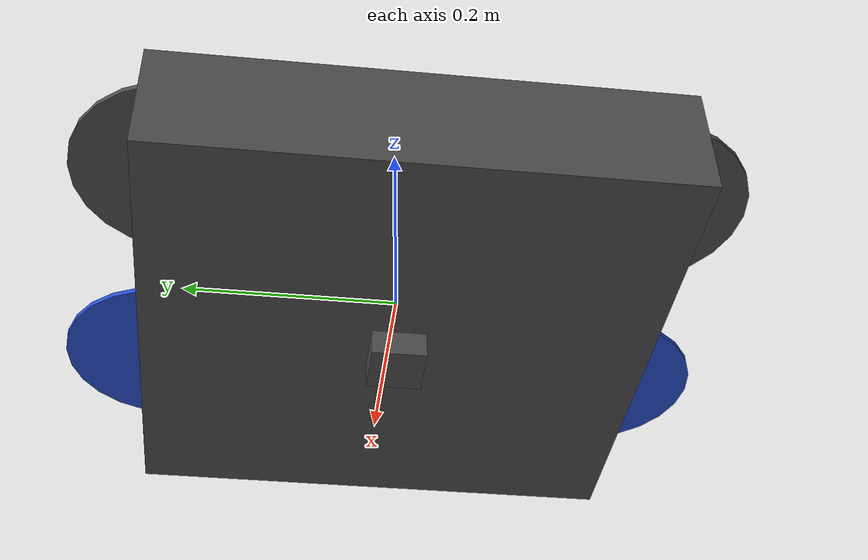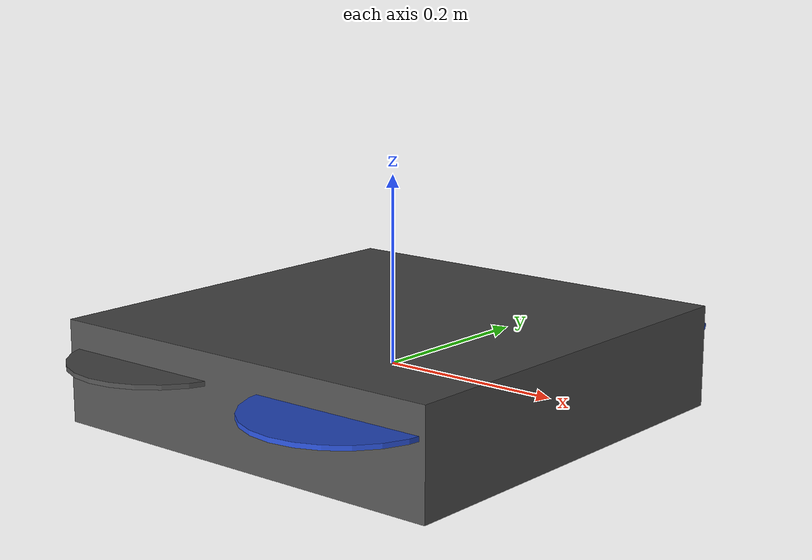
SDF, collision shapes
<sdf version='1.5'>
  <model name='iris'>
    <link name='base_link'>
      <pose frame=''>0 0 0 0 -0 0</pose>
      <inertial>
        <pose frame=''>0 0 -0 0 -0 0</pose>
        <mass>1.50001</mass>
        <inertia>
          <ixx>0.0347573</ixx>
          <ixy>0</ixy>
          <ixz>-1.03398e-25</ixz>
          <iyy>0.0458939</iyy>
          <iyz>0</iyz>
          <izz>0.097701</izz>
        </inertia>
      </inertial>
      <collision name='base_link_inertia_collision'>
        <pose frame=''>0 0 0 0 -0 0</pose>
        <geometry>
          <box>
            <size>0.47 0.47 0.11</size>
          </box>
        </geometry>
        <surface>
          <contact>
            <ode/>
          </contact>
          <friction>
            <ode/>
          </friction>
        </surface>
      </collision>
      <collision name='base_link_lump::camera_link_collision_1'>
        <pose frame=''>0 0 -0.055 0 1.57 0</pose>
        <geometry>
          <box>
            <size>0.05 0.05 0.05</size>
          </box>
        </geometry>
        <surface>
          <contact>
            <ode/>
          </contact>
          <friction>
            <ode/>
          </friction>
        </surface>
      </collision>
      <visual name='base_link_inertia_visual'>
        <pose frame=''>0 0 0 0 -0 0</pose>
        <geometry>
          <mesh>
            <scale>1 1 1</scale>
            <uri>model://rotors_description/meshes/iris.dae</uri>
          </mesh>
        </geometry>
        <material>
          <script>
            <name>Gazebo/DarkGrey</name>
            <uri>file://media/materials/scripts/gazebo.material</uri>
          </script>
        </material>
      </visual>
      <visual name='base_link_lump::camera_link_visual_1'>
        <pose frame=''>0 0 -0.055 0 1.57 0</pose>
        <geometry>
          <box>
            <size>0.05 0.05 0.05</size>
          </box>
        </geometry>
        <material>
          <script>
            <uri>__default__</uri>
            <name>__default__</name>
          </script>
        </material>
      </visual>
      <velocity_decay/>
      <gravity>1</gravity>
      <velocity_decay/>
      <self_collide>0</self_collide>
      <sensor name='camera1' type='camera'>
        <update_rate>30</update_rate>
        <camera name='head'>
          <horizontal_fov>1.39626</horizontal_fov>
          <image>
            <width>800</width>
            <height>600</height>
            <format>R8G8B8</format>
          </image>
          <clip>
            <near>0.02</near>
            <far>300</far>
          </clip>
          <noise>
            <type>gaussian</type>
            <mean>0</mean>
            <stddev>0.007</stddev>
          </noise>
        </camera>
        <plugin name='camera_controller' filename='libgazebo_ros_camera.so'>
          <alwaysOn>true</alwaysOn>
          <updateRate>0.0</updateRate>
          <cameraName>iris/camera1</cameraName>
          <imageTopicName>image_raw</imageTopicName>
          <cameraInfoTopicName>camera_info</cameraInfoTopicName>
          <frameName>camera_link</frameName>
          <hackBaseline>0.07</hackBaseline>
          <distortionK1>0.0</distortionK1>
          <distortionK2>0.0</distortionK2>
          <distortionK3>0.0</distortionK3>
          <distortionT1>0.0</distortionT1>
          <distortionT2>0.0</distortionT2>
        </plugin>
        <pose frame=''>0 0 -0.055 0 1.57 0</pose>
      </sensor>
    </link>
    <link name='iris/imu_link'>
      <pose frame=''>0 0 0 0 -0 0</pose>
      <inertial>
        <pose frame=''>0 0 0 0 -0 0</pose>
        <mass>0.015</mass>
        <inertia>
          <ixx>1e-05</ixx>
          <ixy>0</ixy>
          <ixz>0</ixz>
          <iyy>1e-05</iyy>
          <iyz>0</iyz>
          <izz>1e-05</izz>
        </inertia>
      </inertial>
    </link>
    <joint name='iris/imu_joint' type='revolute'>
      <child>iris/imu_link</child>
      <parent>base_link</parent>
      <axis>
        <xyz>1 0 0</xyz>
        <limit>
          <lower>0</lower>
          <upper>0</upper>
          <effort>0</effort>
          <velocity>0</velocity>
        </limit>
        <dynamics>
          <spring_reference>0</spring_reference>
          <spring_stiffness>0</spring_stiffness>
        </dynamics>
        <use_parent_model_frame>1</use_parent_model_frame>
      </axis>
    </joint>
    <link name='rotor_0'>
      <pose frame=''>0.13 -0.22 0.023 0 -0 0</pose>
      <inertial>
        <pose frame=''>0 0 0 0 -0 0</pose>
        <mass>0.005</mass>
        <inertia>
          <ixx>9.75e-07</ixx>
          <ixy>0</ixy>
          <ixz>0</ixz>
          <iyy>0.000166704</iyy>
          <iyz>0</iyz>
          <izz>0.000167604</izz>
        </inertia>
      </inertial>
      <collision name='rotor_0_collision'>
        <pose frame=''>0 0 0 0 -0 0</pose>
        <geometry>
          <cylinder>
            <length>0.005</length>
            <radius>0.1</radius>
          </cylinder>
        </geometry>
        <surface>
          <contact>
            <ode/>
          </contact>
          <friction>
            <ode/>
          </friction>
        </surface>
      </collision>
      <visual name='rotor_0_visual'>
        <pose frame=''>0 0 0 0 -0 0</pose>
        <geometry>
          <mesh>
            <scale>1 1 1</scale>
            <uri>model://rotors_description/meshes/iris_prop_ccw.dae</uri>
          </mesh>
        </geometry>
        <material>
          <script>
            <name>Gazebo/Blue</name>
            <uri>file://media/materials/scripts/gazebo.material</uri>
          </script>
        </material>
      </visual>
      <gravity>1</gravity>
      <velocity_decay/>
      <self_collide>0</self_collide>
    </link>
    <joint name='rotor_0_joint' type='revolute'>
      <child>rotor_0</child>
      <parent>base_link</parent>
      <axis>
        <xyz>0 0 1</xyz>
        <limit>
          <lower>-1e+16</lower>
          <upper>1e+16</upper>
        </limit>
        <dynamics>
          <spring_reference>0</spring_reference>
          <spring_stiffness>0</spring_stiffness>
        </dynamics>
        <use_parent_model_frame>1</use_parent_model_frame>
      </axis>
    </joint>
    <link name='rotor_1'>
      <pose frame=''>-0.13 0.2 0.023 0 -0 0</pose>
      <inertial>
        <pose frame=''>0 0 0 0 -0 0</pose>
        <mass>0.005</mass>
        <inertia>
          <ixx>9.75e-07</ixx>
          <ixy>0</ixy>
          <ixz>0</ixz>
          <iyy>0.000166704</iyy>
          <iyz>0</iyz>
          <izz>0.000167604</izz>
        </inertia>
      </inertial>
      <collision name='rotor_1_collision'>
        <pose frame=''>0 0 0 0 -0 0</pose>
        <geometry>
          <cylinder>
            <length>0.005</length>
            <radius>0.1</radius>
          </cylinder>
        </geometry>
        <surface>
          <contact>
            <ode/>
          </contact>
          <friction>
            <ode/>
          </friction>
        </surface>
      </collision>
      <visual name='rotor_1_visual'>
        <pose frame=''>0 0 0 0 -0 0</pose>
        <geometry>
          <mesh>
            <scale>1 1 1</scale>
            <uri>model://rotors_description/meshes/iris_prop_ccw.dae</uri>
          </mesh>
        </geometry>
        <material>
          <script>
            <name>Gazebo/DarkGrey</name>
            <uri>file://media/materials/scripts/gazebo.material</uri>
          </script>
        </material>
      </visual>
      <gravity>1</gravity>
      <velocity_decay/>
      <self_collide>0</self_collide>
    </link>
    <joint name='rotor_1_joint' type='revolute'>
      <child>rotor_1</child>
      <parent>base_link</parent>
      <axis>
        <xyz>0 0 1</xyz>
        <limit>
          <lower>-1e+16</lower>
          <upper>1e+16</upper>
        </limit>
        <dynamics>
          <spring_reference>0</spring_reference>
          <spring_stiffness>0</spring_stiffness>
        </dynamics>
        <use_parent_model_frame>1</use_parent_model_frame>
      </axis>
    </joint>
    <link name='rotor_2'>
      <pose frame=''>0.13 0.22 0.023 0 -0 0</pose>
      <inertial>
        <pose frame=''>0 0 0 0 -0 0</pose>
        <mass>0.005</mass>
        <inertia>
          <ixx>9.75e-07</ixx>
          <ixy>0</ixy>
          <ixz>0</ixz>
          <iyy>0.000166704</iyy>
          <iyz>0</iyz>
          <izz>0.000167604</izz>
        </inertia>
      </inertial>
      <collision name='rotor_2_collision'>
        <pose frame=''>0 0 0 0 -0 0</pose>
        <geometry>
          <cylinder>
            <length>0.005</length>
            <radius>0.1</radius>
          </cylinder>
        </geometry>
        <surface>
          <contact>
            <ode/>
          </contact>
          <friction>
            <ode/>
          </friction>
        </surface>
      </collision>
      <visual name='rotor_2_visual'>
        <pose frame=''>0 0 0 0 -0 0</pose>
        <geometry>
          <mesh>
            <scale>1 1 1</scale>
            <uri>model://rotors_description/meshes/iris_prop_cw.dae</uri>
          </mesh>
        </geometry>
        <material>
          <script>
            <name>Gazebo/Blue</name>
            <uri>file://media/materials/scripts/gazebo.material</uri>
          </script>
        </material>
      </visual>
      <gravity>1</gravity>
      <velocity_decay/>
      <self_collide>0</self_collide>
    </link>
    <joint name='rotor_2_joint' type='revolute'>
      <child>rotor_2</child>
      <parent>base_link</parent>
      <axis>
        <xyz>0 0 1</xyz>
        <limit>
          <lower>-1e+16</lower>
          <upper>1e+16</upper>
        </limit>
        <dynamics>
          <spring_reference>0</spring_reference>
          <spring_stiffness>0</spring_stiffness>
        </dynamics>
        <use_parent_model_frame>1</use_parent_model_frame>
      </axis>
    </joint>
    <link name='rotor_3'>
      <pose frame=''>-0.13 -0.2 0.023 0 -0 0</pose>
      <inertial>
        <pose frame=''>0 0 0 0 -0 0</pose>
        <mass>0.005</mass>
        <inertia>
          <ixx>9.75e-07</ixx>
          <ixy>0</ixy>
          <ixz>0</ixz>
          <iyy>0.000166704</iyy>
          <iyz>0</iyz>
          <izz>0.000167604</izz>
        </inertia>
      </inertial>
      <collision name='rotor_3_collision'>
        <pose frame=''>0 0 0 0 -0 0</pose>
        <geometry>
          <cylinder>
            <length>0.005</length>
            <radius>0.1</radius>
          </cylinder>
        </geometry>
        <surface>
          <contact>
            <ode/>
          </contact>
          <friction>
            <ode/>
          </friction>
        </surface>
      </collision>
      <visual name='rotor_3_visual'>
        <pose frame=''>0 0 0 0 -0 0</pose>
        <geometry>
          <mesh>
            <scale>1 1 1</scale>
            <uri>model://rotors_description/meshes/iris_prop_cw.dae</uri>
          </mesh>
        </geometry>
        <material>
          <script>
            <name>Gazebo/DarkGrey</name>
            <uri>file://media/materials/scripts/gazebo.material</uri>
          </script>
        </material>
      </visual>
      <gravity>1</gravity>
      <velocity_decay/>
      <self_collide>0</self_collide>
    </link>
    <joint name='rotor_3_joint' type='revolute'>
      <child>rotor_3</child>
      <parent>base_link</parent>
      <axis>
        <xyz>0 0 1</xyz>
        <limit>
          <lower>-1e+16</lower>
          <upper>1e+16</upper>
        </limit>
        <dynamics>
          <spring_reference>0</spring_reference>
          <spring_stiffness>0</spring_stiffness>
        </dynamics>
        <use_parent_model_frame>1</use_parent_model_frame>
      </axis>
    </joint>
    <plugin name='rosbag' filename='librotors_gazebo_multirotor_base_plugin.so'>
      <robotNamespace>iris</robotNamespace>
      <linkName>base_link</linkName>
      <rotorVelocitySlowdownSim>10</rotorVelocitySlowdownSim>
    </plugin>
    <plugin name='front_right_motor_model' filename='librotors_gazebo_motor_model.so'>
      <robotNamespace>iris</robotNamespace>
      <jointName>rotor_0_joint</jointName>
      <linkName>rotor_0</linkName>
      <turningDirection>ccw</turningDirection>
      <timeConstantUp>0.0125</timeConstantUp>
      <timeConstantDown>0.025</timeConstantDown>
      <maxRotVelocity>838</maxRotVelocity>
      <motorConstant>8.54858e-06</motorConstant>
      <momentConstant>0.16</momentConstant>
      <commandSubTopic>gazebo/command/motor_speed</commandSubTopic>
      <motorNumber>0</motorNumber>
      <rotorDragCoefficient>8.06428e-05</rotorDragCoefficient>
      <rollingMomentCoefficient>1e-06</rollingMomentCoefficient>
      <motorSpeedPubTopic>motor_speed/0</motorSpeedPubTopic>
      <rotorVelocitySlowdownSim>10</rotorVelocitySlowdownSim>
    </plugin>
    <plugin name='back_left_motor_model' filename='librotors_gazebo_motor_model.so'>
      <robotNamespace>iris</robotNamespace>
      <jointName>rotor_1_joint</jointName>
      <linkName>rotor_1</linkName>
      <turningDirection>ccw</turningDirection>
      <timeConstantUp>0.0125</timeConstantUp>
      <timeConstantDown>0.025</timeConstantDown>
      <maxRotVelocity>838</maxRotVelocity>
      <motorConstant>8.54858e-06</motorConstant>
      <momentConstant>0.16</momentConstant>
      <commandSubTopic>gazebo/command/motor_speed</commandSubTopic>
      <motorNumber>1</motorNumber>
      <rotorDragCoefficient>8.06428e-05</rotorDragCoefficient>
      <rollingMomentCoefficient>1e-06</rollingMomentCoefficient>
      <motorSpeedPubTopic>motor_speed/1</motorSpeedPubTopic>
      <rotorVelocitySlowdownSim>10</rotorVelocitySlowdownSim>
    </plugin>
    <plugin name='front_left_motor_model' filename='librotors_gazebo_motor_model.so'>
      <robotNamespace>iris</robotNamespace>
      <jointName>rotor_2_joint</jointName>
      <linkName>rotor_2</linkName>
      <turningDirection>cw</turningDirection>
      <timeConstantUp>0.0125</timeConstantUp>
      <timeConstantDown>0.025</timeConstantDown>
      <maxRotVelocity>838</maxRotVelocity>
      <motorConstant>8.54858e-06</motorConstant>
      <momentConstant>0.16</momentConstant>
      <commandSubTopic>gazebo/command/motor_speed</commandSubTopic>
      <motorNumber>2</motorNumber>
      <rotorDragCoefficient>8.06428e-05</rotorDragCoefficient>
      <rollingMomentCoefficient>1e-06</rollingMomentCoefficient>
      <motorSpeedPubTopic>motor_speed/2</motorSpeedPubTopic>
      <rotorVelocitySlowdownSim>10</rotorVelocitySlowdownSim>
    </plugin>
    <plugin name='back_right_motor_model' filename='librotors_gazebo_motor_model.so'>
      <robotNamespace>iris</robotNamespace>
      <jointName>rotor_3_joint</jointName>
      <linkName>rotor_3</linkName>
      <turningDirection>cw</turningDirection>
      <timeConstantUp>0.0125</timeConstantUp>
      <timeConstantDown>0.025</timeConstantDown>
      <maxRotVelocity>838</maxRotVelocity>
      <motorConstant>8.54858e-06</motorConstant>
      <momentConstant>0.16</momentConstant>
      <commandSubTopic>gazebo/command/motor_speed</commandSubTopic>
      <motorNumber>3</motorNumber>
      <rotorDragCoefficient>8.06428e-05</rotorDragCoefficient>
      <rollingMomentCoefficient>1e-06</rollingMomentCoefficient>
      <motorSpeedPubTopic>motor_speed/3</motorSpeedPubTopic>
      <rotorVelocitySlowdownSim>10</rotorVelocitySlowdownSim>
    </plugin>
    <plugin name='mavlink_interface' filename='librotors_gazebo_mavlink_interface.so'>
      <robotNamespace>iris</robotNamespace>
      <imuSubTopic>imu</imuSubTopic>
      <motorSpeedCommandPubTopic>gazebo/command/motor_speed</motorSpeedCommandPubTopic>
    </plugin>
    <static>0</static>
    <plugin name='rotors_gazebo_imu_plugin' filename='librotors_gazebo_imu_plugin.so'>
      <robotNamespace>iris</robotNamespace>
      <linkName>iris/imu_link</linkName>
      <imuTopic>imu</imuTopic>
      <gyroscopeNoiseDensity>0.0003394</gyroscopeNoiseDensity>
      <gyroscopeRandomWalk>3.8785e-05</gyroscopeRandomWalk>
      <gyroscopeBiasCorrelationTime>1000.0</gyroscopeBiasCorrelationTime>
      <gyroscopeTurnOnBiasSigma>0.0087</gyroscopeTurnOnBiasSigma>
      <accelerometerNoiseDensity>0.004</accelerometerNoiseDensity>
      <accelerometerRandomWalk>0.006</accelerometerRandomWalk>
      <accelerometerBiasCorrelationTime>300.0</accelerometerBiasCorrelationTime>
      <accelerometerTurnOnBiasSigma>0.196</accelerometerTurnOnBiasSigma>
    </plugin>
  </model>
</sdf>
